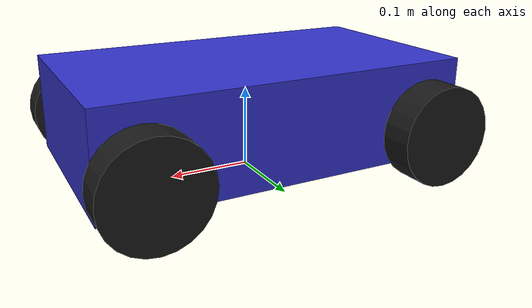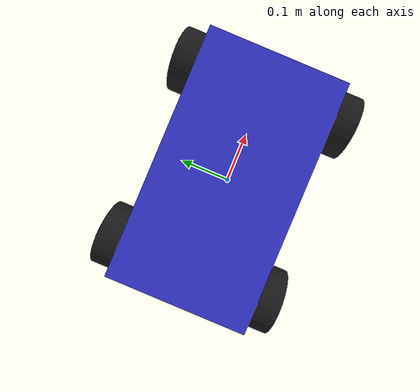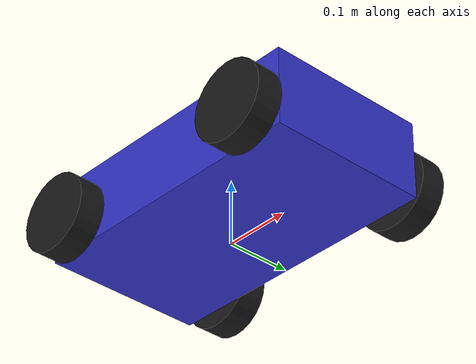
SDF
<?xml version="1.0" ?>
<!-- TruggyAD 1/8 Scale RC Truggy Model for Gazebo Harmonic -->
<sdf version="1.9">
  <model name="truggy">
    <static>false</static>

    <!-- Chassis -->
    <link name="chassis">
      <pose>0 0 0.08 0 0 0</pose>
      <inertial>
        <mass>5.0</mass>
        <inertia>
          <ixx>0.05</ixx><iyy>0.08</iyy><izz>0.04</izz>
          <ixy>0</ixy><ixz>0</ixz><iyz>0</iyz>
        </inertia>
      </inertial>
      <collision name="chassis_collision">
        <geometry>
          <box><size>0.45 0.25 0.12</size></box>
        </geometry>
      </collision>
      <visual name="chassis_visual">
        <geometry>
          <box><size>0.45 0.25 0.12</size></box>
        </geometry>
        <material>
          <ambient>0.2 0.2 0.8 1</ambient>
          <diffuse>0.2 0.2 0.8 1</diffuse>
        </material>
      </visual>

      <!-- Stereo camera (ZED) -->
      <sensor name="stereo_camera" type="camera">
        <pose>0.15 0 0.15 0 0.21 0</pose>  <!-- 12° downward -->
        <update_rate>30</update_rate>
        <camera>
          <horizontal_fov>1.74</horizontal_fov>
          <image>
            <width>1280</width>
            <height>720</height>
          </image>
          <clip><near>0.3</near><far>20</far></clip>
        </camera>
        <always_on>true</always_on>
      </sensor>

      <!-- Depth camera (simulates ZED depth) -->
      <sensor name="depth_camera" type="depth_camera">
        <pose>0.15 0 0.15 0 0.21 0</pose>
        <update_rate>30</update_rate>
        <camera>
          <horizontal_fov>1.74</horizontal_fov>
          <image>
            <width>1280</width>
            <height>720</height>
          </image>
          <clip><near>0.3</near><far>20</far></clip>
        </camera>
        <always_on>true</always_on>
      </sensor>

      <!-- IMU -->
      <sensor name="imu" type="imu">
        <update_rate>100</update_rate>
        <imu>
          <angular_velocity>
            <x><noise type="gaussian"><mean>0</mean><stddev>0.01</stddev></noise></x>
            <y><noise type="gaussian"><mean>0</mean><stddev>0.01</stddev></noise></y>
            <z><noise type="gaussian"><mean>0</mean><stddev>0.01</stddev></noise></z>
          </angular_velocity>
          <linear_acceleration>
            <x><noise type="gaussian"><mean>0</mean><stddev>0.05</stddev></noise></x>
            <y><noise type="gaussian"><mean>0</mean><stddev>0.05</stddev></noise></y>
            <z><noise type="gaussian"><mean>0</mean><stddev>0.05</stddev></noise></z>
          </linear_acceleration>
        </imu>
        <always_on>true</always_on>
      </sensor>
    </link>

    <!-- Front Left Wheel -->
    <link name="front_left_wheel">
      <pose>0.175 0.15 0.06 -1.5708 0 0</pose>
      <inertial>
        <mass>0.3</mass>
        <inertia>
          <ixx>0.0003</ixx><iyy>0.0003</iyy><izz>0.0005</izz>
          <ixy>0</ixy><ixz>0</ixz><iyz>0</iyz>
        </inertia>
      </inertial>
      <collision name="collision">
        <geometry><cylinder><radius>0.06</radius><length>0.04</length></cylinder></geometry>
        <surface>
          <friction><ode><mu>1.2</mu><mu2>1.0</mu2></ode></friction>
        </surface>
      </collision>
      <visual name="visual">
        <geometry><cylinder><radius>0.06</radius><length>0.04</length></cylinder></geometry>
        <material><ambient>0.1 0.1 0.1 1</ambient></material>
      </visual>
    </link>

    <!-- Front Right Wheel -->
    <link name="front_right_wheel">
      <pose>0.175 -0.15 0.06 -1.5708 0 0</pose>
      <inertial>
        <mass>0.3</mass>
        <inertia>
          <ixx>0.0003</ixx><iyy>0.0003</iyy><izz>0.0005</izz>
          <ixy>0</ixy><ixz>0</ixz><iyz>0</iyz>
        </inertia>
      </inertial>
      <collision name="collision">
        <geometry><cylinder><radius>0.06</radius><length>0.04</length></cylinder></geometry>
        <surface>
          <friction><ode><mu>1.2</mu><mu2>1.0</mu2></ode></friction>
        </surface>
      </collision>
      <visual name="visual">
        <geometry><cylinder><radius>0.06</radius><length>0.04</length></cylinder></geometry>
        <material><ambient>0.1 0.1 0.1 1</ambient></material>
      </visual>
    </link>

    <!-- Rear Left Wheel -->
    <link name="rear_left_wheel">
      <pose>-0.175 0.15 0.06 -1.5708 0 0</pose>
      <inertial>
        <mass>0.3</mass>
        <inertia>
          <ixx>0.0003</ixx><iyy>0.0003</iyy><izz>0.0005</izz>
          <ixy>0</ixy><ixz>0</ixz><iyz>0</iyz>
        </inertia>
      </inertial>
      <collision name="collision">
        <geometry><cylinder><radius>0.06</radius><length>0.04</length></cylinder></geometry>
        <surface>
          <friction><ode><mu>1.2</mu><mu2>1.0</mu2></ode></friction>
        </surface>
      </collision>
      <visual name="visual">
        <geometry><cylinder><radius>0.06</radius><length>0.04</length></cylinder></geometry>
        <material><ambient>0.1 0.1 0.1 1</ambient></material>
      </visual>
    </link>

    <!-- Rear Right Wheel -->
    <link name="rear_right_wheel">
      <pose>-0.175 -0.15 0.06 -1.5708 0 0</pose>
      <inertial>
        <mass>0.3</mass>
        <inertia>
          <ixx>0.0003</ixx><iyy>0.0003</iyy><izz>0.0005</izz>
          <ixy>0</ixy><ixz>0</ixz><iyz>0</iyz>
        </inertia>
      </inertial>
      <collision name="collision">
        <geometry><cylinder><radius>0.06</radius><length>0.04</length></cylinder></geometry>
        <surface>
          <friction><ode><mu>1.2</mu><mu2>1.0</mu2></ode></friction>
        </surface>
      </collision>
      <visual name="visual">
        <geometry><cylinder><radius>0.06</radius><length>0.04</length></cylinder></geometry>
        <material><ambient>0.1 0.1 0.1 1</ambient></material>
      </visual>
    </link>

    <!-- Joints -->
    <joint name="front_left_steering" type="revolute">
      <parent>chassis</parent><child>front_left_wheel</child>
      <axis><xyz>0 0 1</xyz>
        <limit><lower>-0.5</lower><upper>0.5</upper></limit>
      </axis>
    </joint>

    <joint name="front_right_steering" type="revolute">
      <parent>chassis</parent><child>front_right_wheel</child>
      <axis><xyz>0 0 1</xyz>
        <limit><lower>-0.5</lower><upper>0.5</upper></limit>
      </axis>
    </joint>

    <joint name="rear_left_drive" type="revolute">
      <parent>chassis</parent><child>rear_left_wheel</child>
      <axis><xyz>0 0 1</xyz></axis>
    </joint>

    <joint name="rear_right_drive" type="revolute">
      <parent>chassis</parent><child>rear_right_wheel</child>
      <axis><xyz>0 0 1</xyz></axis>
    </joint>

    <!-- Ackermann steering plugin -->
    <plugin filename="gz-sim-ackermann-steering-system"
            name="gz::sim::systems::AckermannSteering">
      <left_joint>front_left_steering</left_joint>
      <right_joint>front_right_steering</right_joint>
      <left_joint>rear_left_drive</left_joint>
      <right_joint>rear_right_drive</right_joint>
      <wheel_separation>0.30</wheel_separation>
      <kingpin_width>0.30</kingpin_width>
      <wheel_base>0.35</wheel_base>
      <wheel_radius>0.06</wheel_radius>
      <steering_limit>0.5</steering_limit>
      <topic>cmd_vel</topic>
    </plugin>
  </model>
</sdf>
